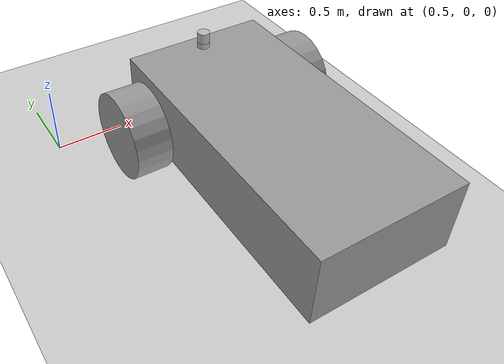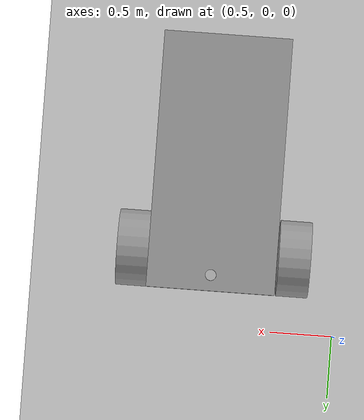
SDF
<sdf version="1.4">
 <world name="default">
  <include><uri>model://ground_plane</uri></include>
  <include><uri>model://sun</uri></include>
  <include>
   <uri>model://robot</uri>
   <pose>1.5 -1 0 0 0 1.5708</pose>
   <plugin name="robot_control" filename="librobot_plugin.so"/>
  </include>
 </world>
</sdf>

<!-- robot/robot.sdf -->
<sdf version='1.6'>

    <!-- ******************** ROBOT MODEL ******************** -->

    <model name='robot_engrais'>

        <!-- ******************** BODY LINK ******************** -->

        <link name='body'>
            <inertial>
                <mass>20</mass>
                <inertia>
                    <ixx>2.083333333</ixx>
                    <ixy>0</ixy>
                    <ixz>0</ixz>
                    <iyy>7.083333333</iyy>
                    <iyz>0</iyz>
                    <izz>8.333333333</izz>
                </inertia>
                <pose frame=''>0 0 0 0 -0 0</pose>
            </inertial>
            <pose frame=''>-0.295627 -0.002357 0.533914 0 -0 0</pose>
            <gravity>1</gravity>
            <self_collide>0</self_collide>
            <kinematic>0</kinematic>
            <enable_wind>0</enable_wind>
            <visual name='visual'>
                <pose frame=''>0 0 0 0 -0 0</pose>
                <geometry>
                    <box>
                        <size>2 1 0.5</size>
                    </box>
                </geometry>
                <material>
                    <lighting>1</lighting>
                    <script>
                        <uri>file://media/materials/scripts/gazebo.material</uri>
                        <name>Gazebo/Grey</name>
                    </script>
                    <shader type='pixel'>
                        <normal_map>__default__</normal_map>
                    </shader>
                    <ambient>0.3 0.3 0.3 1</ambient>
                    <diffuse>0.7 0.7 0.7 1</diffuse>
                    <specular>0.01 0.01 0.01 1</specular>
                    <emissive>0 0 0 1</emissive>
                </material>
                <transparency>0</transparency>
                <cast_shadows>1</cast_shadows>
            </visual>
            <collision name='collision'>
                <laser_retro>0</laser_retro>
                <max_contacts>10</max_contacts>
                <pose frame=''>0 0 0 0 -0 0</pose>
                <geometry>
                    <box>
                        <size>2 1 0.5</size>
                    </box>
                </geometry>
                <surface>
                    <friction>
                        <ode>
                            <mu>1</mu>
                            <mu2>1</mu2>
                            <fdir1>0 0 0</fdir1>
                            <slip1>0</slip1>
                            <slip2>0</slip2>
                        </ode>
                        <torsional>
                            <coefficient>1</coefficient>
                            <patch_radius>0</patch_radius>
                            <surface_radius>0</surface_radius>
                            <use_patch_radius>1</use_patch_radius>
                            <ode>
                                <slip>0</slip>
                            </ode>
                        </torsional>
                    </friction>
                    <bounce>
                        <restitution_coefficient>0</restitution_coefficient>
                        <threshold>1e+06</threshold>
                    </bounce>
                    <contact>
                        <collide_without_contact>0</collide_without_contact>
                        <collide_without_contact_bitmask>1</collide_without_contact_bitmask>
                        <collide_bitmask>1</collide_bitmask>
                        <ode>
                            <soft_cfm>0</soft_cfm>
                            <soft_erp>0.2</soft_erp>
                            <kp>1e+13</kp>
                            <kd>1</kd>
                            <max_vel>0.01</max_vel>
                            <min_depth>0</min_depth>
                        </ode>
                        <bullet>
                            <split_impulse>1</split_impulse>
                            <split_impulse_penetration_threshold>-0.01</split_impulse_penetration_threshold>
                            <soft_cfm>0</soft_cfm>
                            <soft_erp>0.2</soft_erp>
                            <kp>1e+13</kp>
                            <kd>1</kd>
                        </bullet>
                    </contact>
                </surface>
            </collision>
        </link>

        <!-- ******************** WHEEL 1 LINK ******************** -->

        <link name='wheel_1'>
            <inertial>
                <mass>3</mass>
                <inertia>
                    <ixx>0.083125</ixx>
                    <ixy>0</ixy>
                    <ixz>0</ixz>
                    <iyy>0.083125</iyy>
                    <iyz>0</iyz>
                    <izz>0.135</izz>
                </inertia>
                <pose frame=''>0 0 0 0 -0 0</pose>
            </inertial>
            <pose frame=''>0.404373 0.637672 0.433914 1.5707 -0 0</pose>
            <gravity>1</gravity>
            <self_collide>0</self_collide>
            <kinematic>0</kinematic>
            <enable_wind>0</enable_wind>
            <visual name='visual'>
                <pose frame=''>0 0 0 0 -0 0</pose>
                <geometry>
                    <cylinder>
                        <radius>0.3</radius>
                        <length>0.25</length>
                    </cylinder>
                </geometry>
                <material>
                    <lighting>1</lighting>
                    <script>
                        <uri>file://media/materials/scripts/gazebo.material</uri>
                        <name>Gazebo/Grey</name>
                    </script>
                    <shader type='pixel'>
                        <normal_map>__default__</normal_map>
                    </shader>
                    <ambient>0.3 0.3 0.3 1</ambient>
                    <diffuse>0.7 0.7 0.7 1</diffuse>
                    <specular>0.01 0.01 0.01 1</specular>
                    <emissive>0 0 0 1</emissive>
                </material>
                <transparency>0</transparency>
                <cast_shadows>1</cast_shadows>
            </visual>
            <collision name='collision'>
                <laser_retro>0</laser_retro>
                <max_contacts>10</max_contacts>
                <pose frame=''>0 0 0 0 -0 0</pose>
                <geometry>
                    <cylinder>
                        <radius>0.3</radius>
                        <length>0.25</length>
                    </cylinder>
                </geometry>
                <surface>
                    <friction>
                        <ode>
                            <mu>1</mu>
                            <mu2>1</mu2>
                            <fdir1>0 0 0</fdir1>
                            <slip1>0</slip1>
                            <slip2>0</slip2>
                        </ode>
                        <torsional>
                            <coefficient>1</coefficient>
                            <patch_radius>0</patch_radius>
                            <surface_radius>0</surface_radius>
                            <use_patch_radius>1</use_patch_radius>
                            <ode>
                                <slip>0</slip>
                            </ode>
                        </torsional>
                    </friction>
                    <bounce>
                        <restitution_coefficient>0</restitution_coefficient>
                        <threshold>1e+06</threshold>
                    </bounce>
                    <contact>
                        <collide_without_contact>0</collide_without_contact>
                        <collide_without_contact_bitmask>1</collide_without_contact_bitmask>
                        <collide_bitmask>1</collide_bitmask>
                        <ode>
                            <soft_cfm>0</soft_cfm>
                            <soft_erp>0.2</soft_erp>
                            <kp>1e+13</kp>
                            <kd>1</kd>
                            <max_vel>0.01</max_vel>
                            <min_depth>0</min_depth>
                        </ode>
                        <bullet>
                            <split_impulse>1</split_impulse>
                            <split_impulse_penetration_threshold>-0.01</split_impulse_penetration_threshold>
                            <soft_cfm>0</soft_cfm>
                            <soft_erp>0.2</soft_erp>
                            <kp>1e+13</kp>
                            <kd>1</kd>
                        </bullet>
                    </contact>
                </surface>
            </collision>
        </link>

        <!-- ******************** WHEEL 2 LINK ******************** -->

        <link name='wheel_2'>
            <inertial>
                <mass>3</mass>
                <inertia>
                    <ixx>0.083125</ixx>
                    <ixy>0</ixy>
                    <ixz>0</ixz>
                    <iyy>0.083125</iyy>
                    <iyz>0</iyz>
                    <izz>0.135</izz>
                </inertia>
                <pose frame=''>0 0 0 0 -0 0</pose>
            </inertial>
            <pose frame=''>0.404373 -0.627386 0.433914 1.5707 -0 0</pose>
            <gravity>1</gravity>
            <self_collide>0</self_collide>
            <kinematic>0</kinematic>
            <enable_wind>0</enable_wind>
            <visual name='visual'>
                <pose frame=''>0 0 0 0 -0 0</pose>
                <geometry>
                    <cylinder>
                        <radius>0.3</radius>
                        <length>0.25</length>
                    </cylinder>
                </geometry>
                <material>
                    <lighting>1</lighting>
                    <script>
                        <uri>file://media/materials/scripts/gazebo.material</uri>
                        <name>Gazebo/Grey</name>
                    </script>
                    <shader type='pixel'>
                        <normal_map>__default__</normal_map>
                    </shader>
                    <ambient>0.3 0.3 0.3 1</ambient>
                    <diffuse>0.7 0.7 0.7 1</diffuse>
                    <specular>0.01 0.01 0.01 1</specular>
                    <emissive>0 0 0 1</emissive>
                </material>
                <transparency>0</transparency>
                <cast_shadows>1</cast_shadows>
            </visual>
            <collision name='collision'>
                <laser_retro>0</laser_retro>
                <max_contacts>10</max_contacts>
                <pose frame=''>0 0 0 0 -0 0</pose>
                <geometry>
                    <cylinder>
                        <radius>0.3</radius>
                        <length>0.25</length>
                    </cylinder>
                </geometry>
                <surface>
                    <friction>
                        <ode>
                            <mu>1</mu>
                            <mu2>1</mu2>
                            <fdir1>0 0 0</fdir1>
                            <slip1>0</slip1>
                            <slip2>0</slip2>
                        </ode>
                        <torsional>
                            <coefficient>1</coefficient>
                            <patch_radius>0</patch_radius>
                            <surface_radius>0</surface_radius>
                            <use_patch_radius>1</use_patch_radius>
                            <ode>
                                <slip>0</slip>
                            </ode>
                        </torsional>
                    </friction>
                    <bounce>
                        <restitution_coefficient>0</restitution_coefficient>
                        <threshold>1e+06</threshold>
                    </bounce>
                    <contact>
                        <collide_without_contact>0</collide_without_contact>
                        <collide_without_contact_bitmask>1</collide_without_contact_bitmask>
                        <collide_bitmask>1</collide_bitmask>
                        <ode>
                            <soft_cfm>0</soft_cfm>
                            <soft_erp>0.2</soft_erp>
                            <kp>1e+13</kp>
                            <kd>1</kd>
                            <max_vel>0.01</max_vel>
                            <min_depth>0</min_depth>
                        </ode>
                        <bullet>
                            <split_impulse>1</split_impulse>
                            <split_impulse_penetration_threshold>-0.01</split_impulse_penetration_threshold>
                            <soft_cfm>0</soft_cfm>
                            <soft_erp>0.2</soft_erp>
                            <kp>1e+13</kp>
                            <kd>1</kd>
                        </bullet>
                    </contact>
                </surface>
            </collision>
        </link>

        <!-- ******************** SPHERE LINK ******************** -->

        <link name='sphere'>
            <inertial>
                <mass>2</mass>
                <inertia>
                    <ixx>0.032</ixx>
                    <ixy>0</ixy>
                    <ixz>0</ixz>
                    <iyy>0.032</iyy>
                    <iyz>0</iyz>
                    <izz>0.032</izz>
                </inertia>
                <pose frame=''>0 0 0 0 -0 0</pose>
            </inertial>
            <pose frame=''>-1.09563 -0.002357 0.333914 0 -0 0</pose>
            <gravity>1</gravity>
            <self_collide>0</self_collide>
            <kinematic>0</kinematic>
            <enable_wind>0</enable_wind>
            <visual name='visual'>
                <pose frame=''>0 0 0 0 -0 0</pose>
                <geometry>
                    <sphere>
                        <radius>0.2</radius>
                    </sphere>
                </geometry>
                <material>
                    <lighting>1</lighting>
                    <script>
                        <uri>file://media/materials/scripts/gazebo.material</uri>
                        <name>Gazebo/Grey</name>
                    </script>
                    <shader type='pixel'>
                        <normal_map>__default__</normal_map>
                    </shader>
                    <ambient>0.3 0.3 0.3 1</ambient>
                    <diffuse>0.7 0.7 0.7 1</diffuse>
                    <specular>0.01 0.01 0.01 1</specular>
                    <emissive>0 0 0 1</emissive>
                </material>
                <transparency>0</transparency>
                <cast_shadows>1</cast_shadows>
            </visual>
            <collision name='collision'>
                <laser_retro>0</laser_retro>
                <max_contacts>10</max_contacts>
                <pose frame=''>0 0 0 0 -0 0</pose>
                <geometry>
                    <sphere>
                        <radius>0.2</radius>
                    </sphere>
                </geometry>
                <surface>
                    <friction>
                        <ode>
                            <mu>1</mu>
                            <mu2>1</mu2>
                            <fdir1>0 0 0</fdir1>
                            <slip1>0</slip1>
                            <slip2>0</slip2>
                        </ode>
                        <torsional>
                            <coefficient>1</coefficient>
                            <patch_radius>0</patch_radius>
                            <surface_radius>0</surface_radius>
                            <use_patch_radius>1</use_patch_radius>
                            <ode>
                                <slip>0</slip>
                            </ode>
                        </torsional>
                    </friction>
                    <bounce>
                        <restitution_coefficient>0</restitution_coefficient>
                        <threshold>1e+06</threshold>
                    </bounce>
                    <contact>
                        <collide_without_contact>0</collide_without_contact>
                        <collide_without_contact_bitmask>1</collide_without_contact_bitmask>
                        <collide_bitmask>1</collide_bitmask>
                        <ode>
                            <soft_cfm>0</soft_cfm>
                            <soft_erp>0.2</soft_erp>
                            <kp>1e+13</kp>
                            <kd>1</kd>
                            <max_vel>0.01</max_vel>
                            <min_depth>0</min_depth>
                        </ode>
                        <bullet>
                            <split_impulse>1</split_impulse>
                            <split_impulse_penetration_threshold>-0.01</split_impulse_penetration_threshold>
                            <soft_cfm>0</soft_cfm>
                            <soft_erp>0.2</soft_erp>
                            <kp>1e+13</kp>
                            <kd>1</kd>
                        </bullet>
                    </contact>
                </surface>
            </collision>
        </link>

        <!-- ******************** SENSOR MODEL ******************** -->
        <model name='lidar_engrais'>

            <!-- ******************** BASE LINK ******************** -->

            <link name='base'>
                <pose frame=''>0 0 0.029335 0 -0 0</pose>
                <inertial>
                    <mass>1.2</mass>
                    <inertia>
                        <ixx>0.00108747</ixx>
                        <iyy>0.00108747</iyy>
                        <izz>0.00109244</izz>
                        <ixy>0</ixy>
                        <ixz>0</ixz>
                        <iyz>0</iyz>
                    </inertia>
                </inertial>
                <collision name='base_collision'>
                    <geometry>
                        <cylinder>
                            <radius>0.04267</radius>
                            <length>0.05867</length>
                        </cylinder>
                    </geometry>
                </collision>
                <visual name='base_visual'>
                    <geometry>
                        <cylinder>
                            <radius>0.04267</radius>
                            <length>0.05867</length>
                        </cylinder>
                    </geometry>
                </visual>
            </link>

            <!-- ******************** TOP LINK ******************** -->

            <link name='top'>
                <sensor name='LIDAR' type='ray'>
                    <pose frame=''>0 0 -0.004645 0 -0 0</pose>
                    <visualize>1</visualize>
                    <update_rate>30</update_rate>
                    <ray>
                        <scan>
                            <horizontal>
                                <samples>10</samples>
                                <resolution>1</resolution>
                                <min_angle>-1.57079</min_angle>
                                <max_angle>1.57079</max_angle>
                            </horizontal>
                        </scan>
                        <range>
                            <min>0.05</min>
                            <max>10</max>
                            <resolution>0.02</resolution>
                        </range>
                    </ray>
                </sensor>
                <pose frame=''>0 0 0.095455 0 -0 0</pose>
                <inertial>
                    <mass>0.1</mass>
                    <inertia>
                        <ixx>9.0623e-05</ixx>
                        <iyy>9.0623e-05</iyy>
                        <izz>9.1036e-05</izz>
                        <ixy>0</ixy>
                        <ixz>0</ixz>
                        <iyz>0</iyz>
                    </inertia>
                </inertial>
                <collision name='top_collision'>
                    <geometry>
                        <cylinder>
                            <radius>0.04267</radius>
                            <length>0.07357</length>
                        </cylinder>
                    </geometry>
                </collision>
                <visual name='top_visual'>
                    <geometry>
                        <cylinder>
                            <radius>0.04267</radius>
                            <length>0.07357</length>
                        </cylinder>
                    </geometry>
                </visual>
            </link>

            <!-- ******************** JOINT SENSOR BASE TOP ******************** -->

            <joint name='base_JOINT_top' type='revolute'>
                <pose frame=''>0 0 -0.036785 0 -0 0</pose>
                <parent>base</parent>
                <child>top</child>
                <axis>
                    <xyz>0 0 1</xyz>
                    <limit>
                        <lower>-1e+16</lower>
                        <upper>1e+16</upper>
                    </limit>
                    <use_parent_model_frame>0</use_parent_model_frame>
                </axis>
            </joint>
            <pose frame=''>0.582506 -0.005572 0.764343 0 -0 0</pose>
        </model>

        <!-- ******************** JOINT ROBOT BODY WHEEL 1 ******************** -->

        <joint name='body_JOINT_wheel_1' type='revolute'>
            <parent>body</parent>
            <child>wheel_1</child>
            <pose frame=''>0 0 0 0 -0 0</pose>
            <axis>
                <xyz>-0 -0 -1</xyz>
                <use_parent_model_frame>0</use_parent_model_frame>
                <limit>
                    <lower>-1.79769e+308</lower>
                    <upper>1.79769e+308</upper>
                    <effort>-1</effort>
                    <velocity>-1</velocity>
                </limit>
                <dynamics>
                    <spring_reference>0</spring_reference>
                    <spring_stiffness>0</spring_stiffness>
                    <damping>0</damping>
                </dynamics>
            </axis>
            <physics>
                <ode>
                    <limit>
                        <cfm>0</cfm>
                        <erp>0.2</erp>
                    </limit>
                    <suspension>
                        <cfm>0</cfm>
                        <erp>0.2</erp>
                    </suspension>
                </ode>
            </physics>
        </joint>

        <!-- ******************** JOINT ROBOT BODY WHEEL 2 ******************** -->

        <joint name='body_JOINT_wheel_2' type='revolute'>
            <parent>body</parent>
            <child>wheel_2</child>
            <pose frame=''>0 0 0 0 -0 0</pose>
            <axis>
                <xyz>-0 -0 -1</xyz>
                <use_parent_model_frame>0</use_parent_model_frame>
                <limit>
                    <lower>-1.79769e+308</lower>
                    <upper>1.79769e+308</upper>
                    <effort>-1</effort>
                    <velocity>-1</velocity>
                </limit>
                <dynamics>
                    <spring_reference>0</spring_reference>
                    <spring_stiffness>0</spring_stiffness>
                    <damping>0</damping>
                </dynamics>
            </axis>
            <physics>
                <ode>
                    <limit>
                        <cfm>0</cfm>
                        <erp>0.2</erp>
                    </limit>
                    <suspension>
                        <cfm>0</cfm>
                        <erp>0.2</erp>
                    </suspension>
                </ode>
            </physics>
        </joint>

        <!-- ******************** JOINT ROBOT BODY SPHERE ******************** -->

        <joint name='body_JOINT_sphere' type='ball'>
            <parent>body</parent>
            <child>sphere</child>
            <pose frame=''>0 0 0 0 -0 0</pose>
            <physics>
                <ode>
                    <limit>
                        <cfm>0</cfm>
                        <erp>0.2</erp>
                    </limit>
                    <suspension>
                        <cfm>0</cfm>
                        <erp>0.2</erp>
                    </suspension>
                </ode>
            </physics>
        </joint>

        <!-- ******************** JOINT ROBOT BODY LIDAR ******************** -->

        <joint name='body_JOINT_sensor' type='fixed'>
            <parent>body</parent>
            <child>lidar_engrais::base</child>
            <pose frame=''>0 0 0 0 -0 0</pose>
            <physics>
                <ode>
                    <limit>
                        <cfm>0</cfm>
                        <erp>0.2</erp>
                    </limit>
                    <suspension>
                        <cfm>0</cfm>
                        <erp>0.2</erp>
                    </suspension>
                </ode>
            </physics>
        </joint>
        <static>0</static>
        <allow_auto_disable>1</allow_auto_disable>
    </model>
</sdf>
